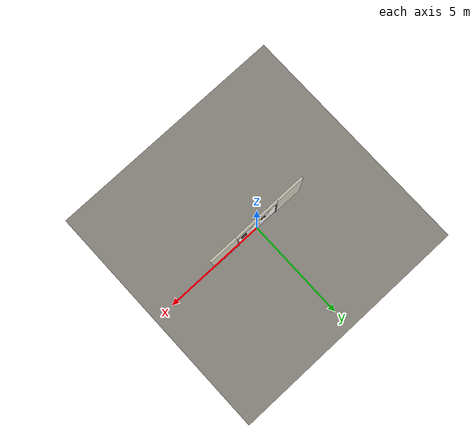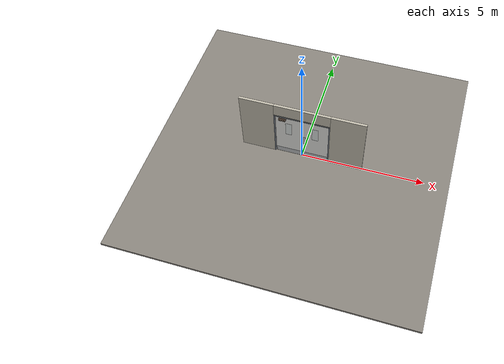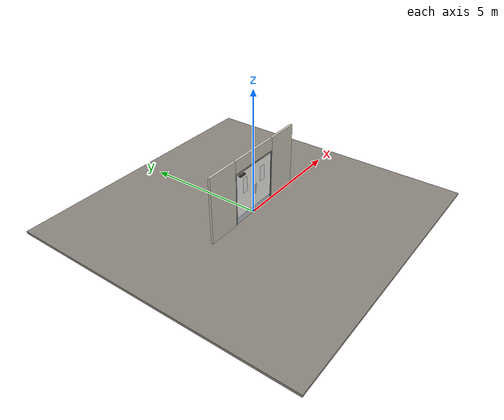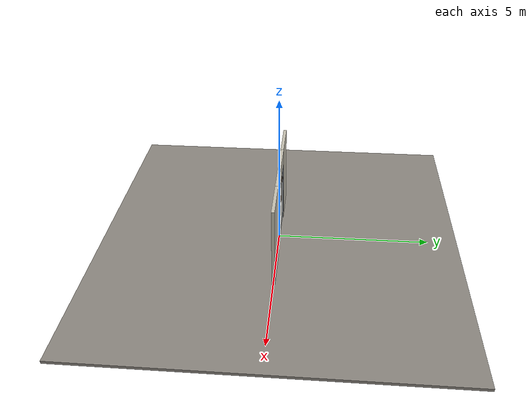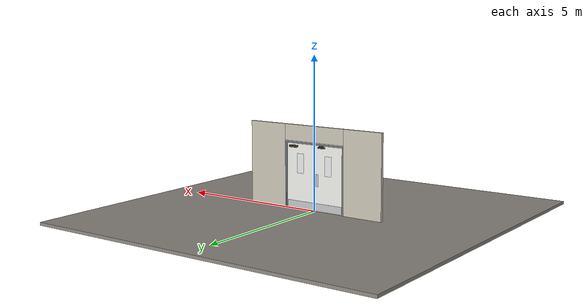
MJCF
<?xml version="1.0" ?>
<mujoco model="db0316_swing_double_simple">
  <compiler angle="radian" meshdir="../../hardware" texturedir="../../textures" autolimits="true" inertiafromgeom="false"/>
  <option timestep="0.002" integrator="implicitfast" cone="elliptic" impratio="10" noslip_iterations="3">
    <flag multiccd="enable"/>
  </option>
  <size memory="16M"/>
  <default>
    <geom condim="4" solref="0.005 1" solimp="0.95 0.99 0.001"/>
    <joint solreflimit="0.005 1" solimplimit="0.95 0.99 0.001"/>
    <tendon solreflimit="0.005 1"/>
    <equality solref="0.002 1"/>
  </default>
  <visual>
    <headlight ambient="0.4 0.4 0.4" diffuse="0.7 0.7 0.7" specular="0.2 0.2 0.2"/>
    <quality shadowsize="4096"/>
    <map znear="0.01" zfar="60"/>
  </visual>
  <asset>
    <mesh name="closer_body_fdc4667657" file="closer_body_fdc4667657.obj"/>
    <material name="mat_floor" rgba="0.55 0.53 0.5 1" specular="0.2" shininess="0.15" reflectance="0"/>
    <material name="mat_wall" rgba="0.78 0.76 0.7 1" specular="0.2" shininess="0.1" reflectance="0"/>
    <material name="mat_leaf_a" rgba="0.93 0.93 0.91 1" specular="0.2" shininess="0.62" reflectance="0"/>
    <material name="mat_glass" rgba="0.85 0.92 0.95 0.25" specular="0.2" shininess="0.95" reflectance="0.1"/>
    <material name="mat_hinge" rgba="0.65 0.66 0.68 1" specular="0.74" shininess="0.5" reflectance="0.36"/>
    <material name="mat_op_stainless" rgba="0.75 0.76 0.77 1" specular="0.8" shininess="0.65" reflectance="0.4"/>
    <material name="mat_maglock" rgba="0.22 0.17 0.13 1" specular="0.8" shininess="0.6" reflectance="0.4"/>
    <material name="mat_closer" rgba="0.22 0.17 0.13 1" specular="0.8" shininess="0.6" reflectance="0.4"/>
    <material name="mat_kick" rgba="0.75 0.76 0.77 1" specular="0.8" shininess="0.65" reflectance="0.4"/>
    <material name="mat_leaf_b" rgba="0.93 0.93 0.91 1" specular="0.2" shininess="0.62" reflectance="0"/>
    <material name="mat_frame" rgba="0.45 0.48 0.52 1" specular="0.32" shininess="0.6" reflectance="0.08"/>
    <texture name="skybox" type="skybox" builtin="gradient" rgb1="0.6 0.7 0.85" rgb2="0.9 0.92 0.95" width="256" height="256"/>
  </asset>
  <worldbody>
    <light name="sun" pos="1.5 -2.5 4" dir="-0.3 0.5 -0.8" directional="true" diffuse="0.8 0.8 0.8" specular="0.3 0.3 0.3" castshadow="true"/>
    <light name="fill" pos="-1.5 2.5 3" dir="0.3 -0.5 -0.7" directional="true" diffuse="0.35 0.35 0.4" castshadow="false"/>
    <camera name="robot_view" pos="0 -2.637812 1.812087" xyaxes="1 0 0 0 0.26963 0.962964" fovy="52"/>
    <camera name="far_view" pos="0 2.637812 1.812087" xyaxes="-1 0 0 0 -0.26963 0.962964" fovy="52"/>
    <camera name="iso" pos="-2.004737 -2.215762 2.234138" xyaxes="0.741536 -0.670913 0 0.242917 0.268487 0.932151" fovy="46"/>
    <camera name="detail_handle" pos="0.2845 -0.8 1.296" xyaxes="0.97561 0.219512 0 -0.070934 0.315262 0.94635" fovy="38"/>
    <geom name="floor" type="box" size="6 6 0.05" pos="0 0 -0.05" material="mat_floor" group="0" contype="1" conaffinity="1" friction="0.8 0.005 0.0001" density="2400"/>
    <geom name="wall_left" type="box" size="0.68925 0.05 1.3735" pos="-1.81075 0 1.3735" material="mat_wall" group="0" contype="1" conaffinity="1" friction="0.6 0.005 0.0001" density="800"/>
    <geom name="wall_right" type="box" size="0.68925 0.05 1.3735" pos="1.81075 0 1.3735" material="mat_wall" group="0" contype="1" conaffinity="1" friction="0.6 0.005 0.0001" density="800"/>
    <geom name="wall_header" type="box" size="1.1215 0.05 0.26" pos="0 0 2.487" material="mat_wall" group="0" contype="1" conaffinity="1" friction="0.6 0.005 0.0001" density="800"/>
    <geom name="leaf_a_maglock_body" type="box" size="0.125 0.025 0.02" pos="-0.3015 0.057 2.082" material="mat_maglock" group="0" contype="1" conaffinity="1" friction="0.6 0.005 0.0001" density="2000"/>
    <geom name="leaf_a_maglock_bracket" type="box" size="0.09 0.025 0.0225" pos="-0.3015 0.057 2.1245" material="mat_maglock" group="1" contype="0" conaffinity="0" density="7850"/>
    <geom name="jamb_l" type="box" size="0.025 0.05 1.0735" pos="-1.0965 0 1.0735" material="mat_frame" group="0" contype="1" conaffinity="1" friction="0.6 0.005 0.0001" density="300"/>
    <geom name="jamb_r" type="box" size="0.025 0.05 1.0735" pos="1.0965 0 1.0735" material="mat_frame" group="0" contype="1" conaffinity="1" friction="0.6 0.005 0.0001" density="300"/>
    <geom name="jamb_head" type="box" size="1.1215 0.05 0.025" pos="0 0 2.172" material="mat_frame" group="0" contype="1" conaffinity="1" friction="0.6 0.005 0.0001" density="300"/>
    <geom name="head_stud" type="box" size="1.1215 0.05 0.015" pos="0 0 2.212" material="mat_wall" group="0" contype="1" conaffinity="1" friction="0.6 0.005 0.0001" density="500"/>
    <site name="approach_point" pos="0 -1.5 0" quat="1 0 0 0" size="0.05" rgba="0.2 0.9 0.2 0.5" group="4"/>
    <site name="goal_point" pos="0 1.5 0" quat="1 0 0 0" size="0.05" rgba="0.2 0.9 0.2 0.5" group="4"/>
    <site name="door_plane_center" pos="0 0 1.0735" quat="1 0 0 0" size="0.02" rgba="0.2 0.9 0.2 0.5" group="4"/>
    <site name="approach_point_2" pos="0 -1.5 0" quat="1 0 0 0" size="0.05" rgba="0.2 0.9 0.2 0.5" group="4"/>
    <site name="goal_point_2" pos="0 1.5 0" quat="1 0 0 0" size="0.05" rgba="0.2 0.9 0.2 0.5" group="4"/>
    <site name="door_plane_center_2" pos="0 0 1.0735" quat="1 0 0 0" size="0.02" rgba="0.2 0.9 0.2 0.5" group="4"/>
    <site name="approach_point_3" pos="0 -1.5 0" quat="1 0 0 0" size="0.05" rgba="0.2 0.9 0.2 0.5" group="4"/>
    <site name="goal_point_3" pos="0 1.5 0" quat="1 0 0 0" size="0.05" rgba="0.2 0.9 0.2 0.5" group="4"/>
    <site name="door_plane_center_3" pos="0 0 1.0735" quat="1 0 0 0" size="0.02" rgba="0.2 0.9 0.2 0.5" group="4"/>
    <body name="leaf_a" pos="-1.0715 0 0">
      <inertial pos="0.466345 -0.016146 1.204401" mass="52.127925" quat="-0.49032 0.465717 0.521813 0.520005" diaginertia="4.655373577 27.947952004 32.515191245"/>
      <joint name="leaf_a_hinge" type="hinge" axis="0 0 -1" pos="0.003 -0.029 0" limited="true" range="0 1.570796" solreflimit="0.02 1" damping="12.49954" frictionloss="3.372506" stiffness="13.521804" springref="-2.326613" armature="0.02"/>
      <geom name="leaf_a_slab" type="box" size="0.5335 0.022 1.067" pos="0.5365 0 1.076" material="mat_leaf_a" group="0" contype="1" conaffinity="1" friction="0.4 0.005 0.0001" density="1"/>
      <geom name="leaf_a_glass_0" type="box" size="0.125 0.0228 0.3201" pos="0.5365 0 1.5028" material="mat_glass" group="1" contype="0" conaffinity="0" density="1"/>
      <geom name="hinge_continuous" type="cylinder" size="0.0136 1.057" pos="0.003 -0.029 1.076" material="mat_hinge" group="1" contype="0" conaffinity="0" density="2700"/>
      <geom name="leaf_a_push_plate_p" type="box" size="0.05 0.0008 0.2" pos="0.965 0.0228 1.016" material="mat_op_stainless" group="1" contype="0" conaffinity="0" density="7900"/>
      <geom name="leaf_a_maglock_armature" type="box" size="0.09 0.005 0.02" pos="0.77 0.027 2.082" material="mat_maglock" group="1" contype="0" conaffinity="0" density="7800"/>
      <geom name="closer_body" type="mesh" mesh="closer_body_fdc4667657" pos="0.3 -0.022 2.054" quat="0.707107 0.707107 0 0" material="mat_closer" group="1" contype="0" conaffinity="0" density="2000"/>
      <geom name="closer_body_col" type="box" size="0.145 0.05 0.035" pos="0.3 -0.072 2.054" material="mat_closer" group="3" contype="1" conaffinity="1" rgba="0.8 0.3 0.3 0.25" friction="0.6 0.005 0.0001" density="2000"/>
      <geom name="kick_plate_n" type="box" size="0.5035 0.0008 0.125" pos="0.5365 -0.0228 0.144" material="mat_kick" group="2" contype="0" conaffinity="0" density="7900"/>
      <geom name="kick_plate_p" type="box" size="0.5035 0.0008 0.125" pos="0.5365 0.0228 0.144" material="mat_kick" group="2" contype="0" conaffinity="0" density="7900"/>
      <site name="leaf_a_push_plate_push_p" pos="0.965 0.022 1.016" quat="1 0 0 0" size="0.012" rgba="0.2 0.9 0.2 0.5" group="4"/>
      <site name="leaf_a_edge_mid" pos="1.07 0 1.067" quat="1 0 0 0" size="0.02" rgba="0.2 0.9 0.2 0.5" group="4"/>
    </body>
    <body name="leaf_b" pos="1.0715 0 0">
      <inertial pos="-0.463879 0.016497 1.197274" mass="52.095843" quat="0.522507 -0.522115 -0.48852 -0.464468" diaginertia="4.625834768 27.850944338 32.390522901"/>
      <joint name="leaf_b_hinge" type="hinge" axis="0 0 -1" pos="-0.003 0.029 0" limited="true" range="0 1.570796" solreflimit="0.02 1" damping="12.49954" frictionloss="3.372506" stiffness="13.521804" springref="-2.326613" armature="0.02"/>
      <geom name="leaf_b_slab" type="box" size="0.5335 0.022 1.067" pos="-0.5365 0 1.076" material="mat_leaf_b" group="0" contype="1" conaffinity="1" friction="0.4 0.005 0.0001" density="1"/>
      <geom name="leaf_b_glass_0" type="box" size="0.125 0.0228 0.3201" pos="-0.5365 0 1.5028" material="mat_glass" group="1" contype="0" conaffinity="0" density="1"/>
      <geom name="hinge_continuous_2" type="cylinder" size="0.0136 1.057" pos="-0.003 0.029 1.076" material="mat_hinge" group="1" contype="0" conaffinity="0" density="2700"/>
      <geom name="leaf_b_push_plate_n" type="box" size="0.05 0.0008 0.2" pos="-0.965 -0.0228 1.016" material="mat_op_stainless" group="1" contype="0" conaffinity="0" density="7900"/>
      <geom name="closer_body_2" type="mesh" mesh="closer_body_fdc4667657" pos="-0.3 0.022 2.054" quat="0 0 0.707107 0.707107" material="mat_closer" group="1" contype="0" conaffinity="0" density="2000"/>
      <geom name="closer_body_col_2" type="box" size="0.145 0.05 0.035" pos="-0.3 0.072 2.054" material="mat_closer" group="3" contype="1" conaffinity="1" rgba="0.8 0.3 0.3 0.25" friction="0.6 0.005 0.0001" density="2000"/>
      <geom name="kick_plate_n_2" type="box" size="0.5035 0.0008 0.125" pos="-0.5365 -0.0228 0.144" material="mat_kick" group="2" contype="0" conaffinity="0" density="7900"/>
      <geom name="kick_plate_p_2" type="box" size="0.5035 0.0008 0.125" pos="-0.5365 0.0228 0.144" material="mat_kick" group="2" contype="0" conaffinity="0" density="7900"/>
      <site name="leaf_b_push_plate_push_n" pos="-0.965 -0.022 1.016" quat="1 0 0 0" size="0.012" rgba="0.2 0.9 0.2 0.5" group="4"/>
      <site name="leaf_b_edge_mid" pos="-1.07 0 1.067" quat="1 0 0 0" size="0.02" rgba="0.2 0.9 0.2 0.5" group="4"/>
    </body>
  </worldbody>
  <equality>
    <weld name="leaf_a_maglock" body1="leaf_a" body2="world" active="true"/>
  </equality>
  <sensor>
    <jointpos name="leaf_a_hinge_pos" joint="leaf_a_hinge"/>
    <jointvel name="leaf_a_hinge_vel" joint="leaf_a_hinge"/>
    <jointpos name="leaf_b_hinge_pos" joint="leaf_b_hinge"/>
    <jointvel name="leaf_b_hinge_vel" joint="leaf_b_hinge"/>
  </sensor>
</mujoco>
